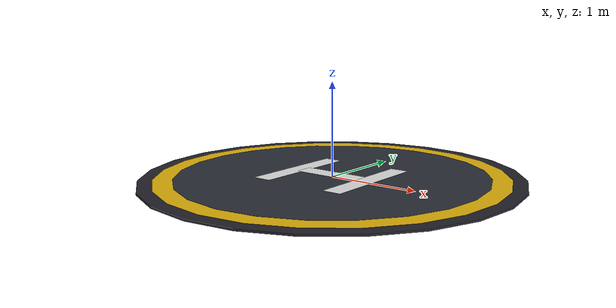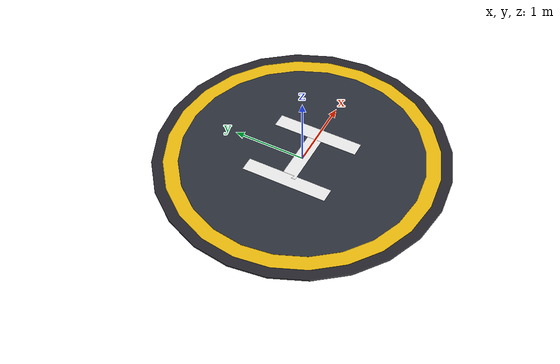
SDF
<?xml version="1.0" encoding="UTF-8"?>
<sdf version="1.9">
  <model name="landing_pad">
    <static>true</static>
    <link name="link">
      <!-- Main Pad Base (Flat circular platform) -->
      <collision name="collision">
        <geometry>
          <cylinder>
            <radius>2.0</radius>
            <length>0.02</length>
          </cylinder>
        </geometry>
        <pose>0 0 0.01 0 0 0</pose>
      </collision>

      <!-- Dark circular base pad -->
      <visual name="base_visual">
        <pose>0 0 0.01 0 0 0</pose>
        <geometry>
          <cylinder>
            <radius>2.0</radius>
            <length>0.02</length>
          </cylinder>
        </geometry>
        <material>
          <ambient>0.15 0.15 0.18 1</ambient>
          <diffuse>0.15 0.15 0.18 1</diffuse>
          <specular>0.1 0.1 0.1 1</specular>
        </material>
      </visual>

      <!-- Yellow Outer Warning Ring -->
      <visual name="ring_visual">
        <pose>0 0 0.021 0 0 0</pose>
        <geometry>
          <cylinder>
            <radius>1.85</radius>
            <length>0.005</length>
          </cylinder>
        </geometry>
        <material>
          <ambient>0.95 0.75 0.05 1</ambient>
          <diffuse>0.95 0.75 0.05 1</diffuse>
        </material>
      </visual>

      <!-- Inner Inner Dark Ring -->
      <visual name="inner_pad_visual">
        <pose>0 0 0.024 0 0 0</pose>
        <geometry>
          <cylinder>
            <radius>1.65</radius>
            <length>0.005</length>
          </cylinder>
        </geometry>
        <material>
          <ambient>0.18 0.20 0.24 1</ambient>
          <diffuse>0.18 0.20 0.24 1</diffuse>
        </material>
      </visual>

      <!-- White 'H' Mark - Left Bar -->
      <visual name="h_left">
        <pose>-0.45 0 0.028 0 0 0</pose>
        <geometry>
          <box>
            <size>0.2 1.2 0.005</size>
          </box>
        </geometry>
        <material>
          <ambient>0.95 0.95 0.95 1</ambient>
          <diffuse>0.95 0.95 0.95 1</diffuse>
        </material>
      </visual>

      <!-- White 'H' Mark - Right Bar -->
      <visual name="h_right">
        <pose>0.45 0 0.028 0 0 0</pose>
        <geometry>
          <box>
            <size>0.2 1.2 0.005</size>
          </box>
        </geometry>
        <material>
          <ambient>0.95 0.95 0.95 1</ambient>
          <diffuse>0.95 0.95 0.95 1</diffuse>
        </material>
      </visual>

      <!-- White 'H' Mark - Center Crossbar -->
      <visual name="h_cross">
        <pose>0 0 0.028 0 0 0</pose>
        <geometry>
          <box>
            <size>0.8 0.2 0.005</size>
          </box>
        </geometry>
        <material>
          <ambient>0.95 0.95 0.95 1</ambient>
          <diffuse>0.95 0.95 0.95 1</diffuse>
        </material>
      </visual>
    </link>
  </model>
</sdf>
